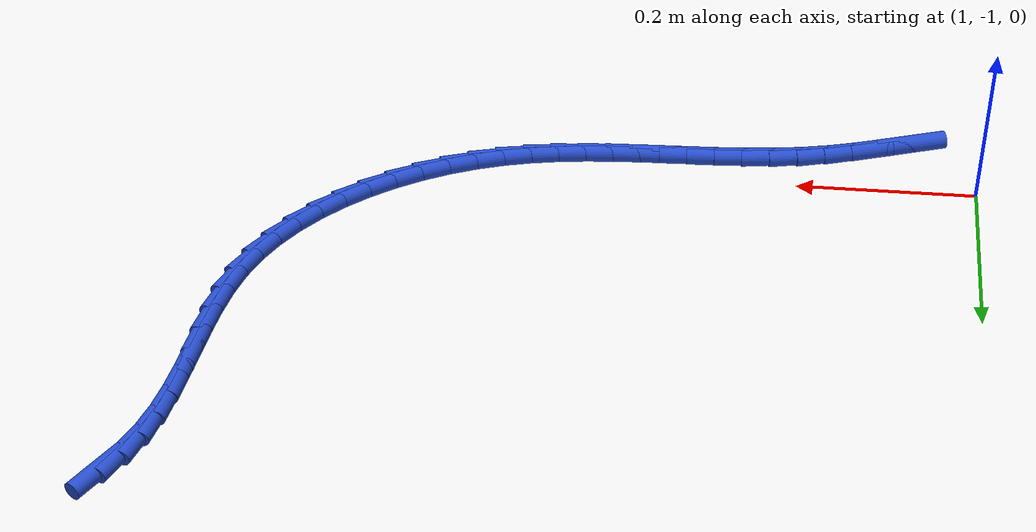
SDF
<sdf version="1.6">
 <world name="default">
  <model name="ground_plane">
   <static>1</static>
   <link name="link">
    <collision name="collision">
     <geometry><plane><normal>0 0 1</normal><size>100 100</size></plane></geometry>
     <surface><friction><ode><mu>100</mu><mu2>50</mu2></ode></friction></surface>
    </collision>
    <visual name="visual">
     <cast_shadows>0</cast_shadows>
     <geometry><plane><normal>0 0 1</normal><size>100 100</size></plane></geometry>
     <material>
      <script><uri>file://media/materials/scripts/gazebo.material</uri><name>Gazebo/WhiteGlow</name></script>
     </material>
    </visual>
   </link>
  </model>
  <model name="line">
   <link name="link_129">
    <pose>1.8794862257224845 -0.5104149278211452 0.01 0 1.57 0.9832538088832969</pose>
    <collision name="collision">
     <geometry><cylinder><radius>0.01</radius><length>0.08</length></cylinder></geometry>
    </collision>
    <visual name="visual">
     <material>
      <script><name>Gazebo/Blue</name><uri>file://media/materials/scripts/gazebo.material</uri></script>
     </material>
     <geometry><cylinder><radius>0.01</radius><length>0.08</length></cylinder></geometry>
    </visual>
   </link>
   <link name="link_130">
    <pose>1.8626352955323215 -0.5357165373397614 0.01 0 1.57 1.0994806862835167</pose>
    <collision name="collision">
     <geometry><cylinder><radius>0.01</radius><length>0.08</length></cylinder></geometry>
    </collision>
    <visual name="visual">
     <material>
      <script><name>Gazebo/Blue</name><uri>file://media/materials/scripts/gazebo.material</uri></script>
     </material>
     <geometry><cylinder><radius>0.01</radius><length>0.08</length></cylinder></geometry>
    </visual>
   </link>
   <link name="link_131">
    <pose>1.8489927261339338 -0.5624865084237812 0.01 0 1.57 1.220638845729452</pose>
    <collision name="collision">
     <geometry><cylinder><radius>0.01</radius><length>0.08</length></cylinder></geometry>
    </collision>
    <visual name="visual">
     <material>
      <script><name>Gazebo/Blue</name><uri>file://media/materials/scripts/gazebo.material</uri></script>
     </material>
     <geometry><cylinder><radius>0.01</radius><length>0.08</length></cylinder></geometry>
    </visual>
   </link>
   <link name="link_132">
    <pose>1.838666074780153 -0.5907626701796276 0.01 0 1.57 1.3129143692624372</pose>
    <collision name="collision">
     <geometry><cylinder><radius>0.01</radius><length>0.08</length></cylinder></geometry>
    </collision>
    <visual name="visual">
     <material>
      <script><name>Gazebo/Blue</name><uri>file://media/materials/scripts/gazebo.material</uri></script>
     </material>
     <geometry><cylinder><radius>0.01</radius><length>0.08</length></cylinder></geometry>
    </visual>
   </link>
   <link name="link_133">
    <pose>1.830898087128074 -0.6202142106364167 0.01 0 1.57 1.373952090563818</pose>
    <collision name="collision">
     <geometry><cylinder><radius>0.01</radius><length>0.08</length></cylinder></geometry>
    </collision>
    <visual name="visual">
     <material>
      <script><name>Gazebo/Blue</name><uri>file://media/materials/scripts/gazebo.material</uri></script>
     </material>
     <geometry><cylinder><radius>0.01</radius><length>0.08</length></cylinder></geometry>
    </visual>
   </link>
   <link name="link_134">
    <pose>1.8248621324778107 -0.6504807449369804 0.01 0 1.57 1.4053194975285626</pose>
    <collision name="collision">
     <geometry><cylinder><radius>0.01</radius><length>0.08</length></cylinder></geometry>
    </collision>
    <visual name="visual">
     <material>
      <script><name>Gazebo/Blue</name><uri>file://media/materials/scripts/gazebo.material</uri></script>
     </material>
     <geometry><cylinder><radius>0.01</radius><length>0.08</length></cylinder></geometry>
    </visual>
   </link>
   <link name="link_135">
    <pose>1.8197315801294784 -0.6812018882241515 0.01 0 1.57 1.4083046524467209</pose>
    <collision name="collision">
     <geometry><cylinder><radius>0.01</radius><length>0.08</length></cylinder></geometry>
    </collision>
    <visual name="visual">
     <material>
      <script><name>Gazebo/Blue</name><uri>file://media/materials/scripts/gazebo.material</uri></script>
     </material>
     <geometry><cylinder><radius>0.01</radius><length>0.08</length></cylinder></geometry>
    </visual>
   </link>
   <link name="link_136">
    <pose>1.814679799383191 -0.7120172556407606 0.01 0 1.57 1.383183171983076</pose>
    <collision name="collision">
     <geometry><cylinder><radius>0.01</radius><length>0.08</length></cylinder></geometry>
    </collision>
    <visual name="visual">
     <material>
      <script><name>Gazebo/Blue</name><uri>file://media/materials/scripts/gazebo.material</uri></script>
     </material>
     <geometry><cylinder><radius>0.01</radius><length>0.08</length></cylinder></geometry>
    </visual>
   </link>
   <link name="link_137">
    <pose>1.8088801595390631 -0.7425664623296405 0.01 0 1.57 1.3291713936222507</pose>
    <collision name="collision">
     <geometry><cylinder><radius>0.01</radius><length>0.08</length></cylinder></geometry>
    </collision>
    <visual name="visual">
     <material>
      <script><name>Gazebo/Blue</name><uri>file://media/materials/scripts/gazebo.material</uri></script>
     </material>
     <geometry><cylinder><radius>0.01</radius><length>0.08</length></cylinder></geometry>
    </visual>
   </link>
   <link name="link_138">
    <pose>1.8015060298972088 -0.7724891234336227 0.01 0 1.57 1.2450075887710201</pose>
    <collision name="collision">
     <geometry><cylinder><radius>0.01</radius><length>0.08</length></cylinder></geometry>
    </collision>
    <visual name="visual">
     <material>
      <script><name>Gazebo/Blue</name><uri>file://media/materials/scripts/gazebo.material</uri></script>
     </material>
     <geometry><cylinder><radius>0.01</radius><length>0.08</length></cylinder></geometry>
    </visual>
   </link>
   <link name="link_139">
    <pose>1.7917307797577433 -0.8014248540955405 0.01 0 1.57 1.1335012575621384</pose>
    <collision name="collision">
     <geometry><cylinder><radius>0.01</radius><length>0.08</length></cylinder></geometry>
    </collision>
    <visual name="visual">
     <material>
      <script><name>Gazebo/Blue</name><uri>file://media/materials/scripts/gazebo.material</uri></script>
     </material>
     <geometry><cylinder><radius>0.01</radius><length>0.08</length></cylinder></geometry>
    </visual>
   </link>
   <link name="link_140">
    <pose>1.7788229157636892 -0.8290364227343261 0.01 0 1.57 1.0197376607577822</pose>
    <collision name="collision">
     <geometry><cylinder><radius>0.01</radius><length>0.08</length></cylinder></geometry>
    </collision>
    <visual name="visual">
     <material>
      <script><name>Gazebo/Blue</name><uri>file://media/materials/scripts/gazebo.material</uri></script>
     </material>
     <geometry><cylinder><radius>0.01</radius><length>0.08</length></cylinder></geometry>
    </visual>
   </link>
   <link name="link_141">
    <pose>1.7627677027701887 -0.8551610329620368 0.01 0 1.57 0.9150325224117422</pose>
    <collision name="collision">
     <geometry><cylinder><radius>0.01</radius><length>0.08</length></cylinder></geometry>
    </collision>
    <visual name="visual">
     <material>
      <script><name>Gazebo/Blue</name><uri>file://media/materials/scripts/gazebo.material</uri></script>
     </material>
     <geometry><cylinder><radius>0.01</radius><length>0.08</length></cylinder></geometry>
    </visual>
   </link>
   <link name="link_142">
    <pose>1.7438770723796762 -0.8797153882502179 0.01 0 1.57 0.8189813162832272</pose>
    <collision name="collision">
     <geometry><cylinder><radius>0.01</radius><length>0.08</length></cylinder></geometry>
    </collision>
    <visual name="visual">
     <material>
      <script><name>Gazebo/Blue</name><uri>file://media/materials/scripts/gazebo.material</uri></script>
     </material>
     <geometry><cylinder><radius>0.01</radius><length>0.08</length></cylinder></geometry>
    </visual>
   </link>
   <link name="link_143">
    <pose>1.722464616711951 -0.9026165961853074 0.01 0 1.57 0.7306249665658359</pose>
    <collision name="collision">
     <geometry><cylinder><radius>0.01</radius><length>0.08</length></cylinder></geometry>
    </collision>
    <visual name="visual">
     <material>
      <script><name>Gazebo/Blue</name><uri>file://media/materials/scripts/gazebo.material</uri></script>
     </material>
     <geometry><cylinder><radius>0.01</radius><length>0.08</length></cylinder></geometry>
    </visual>
   </link>
   <link name="link_144">
    <pose>1.6988439278868193 -0.9237817643537424 0.01 0 1.57 0.6487412495928189</pose>
    <collision name="collision">
     <geometry><cylinder><radius>0.01</radius><length>0.08</length></cylinder></geometry>
    </collision>
    <visual name="visual">
     <material>
      <script><name>Gazebo/Blue</name><uri>file://media/materials/scripts/gazebo.material</uri></script>
     </material>
     <geometry><cylinder><radius>0.01</radius><length>0.08</length></cylinder></geometry>
    </visual>
   </link>
   <link name="link_145">
    <pose>1.6733285980240795 -0.9431280003419601 0.01 0 1.57 0.5719981512286958</pose>
    <collision name="collision">
     <geometry><cylinder><radius>0.01</radius><length>0.08</length></cylinder></geometry>
    </collision>
    <visual name="visual">
     <material>
      <script><name>Gazebo/Blue</name><uri>file://media/materials/scripts/gazebo.material</uri></script>
     </material>
     <geometry><cylinder><radius>0.01</radius><length>0.08</length></cylinder></geometry>
    </visual>
   </link>
   <link name="link_146">
    <pose>1.6462322192435355 -0.9605724117363991 0.01 0 1.57 0.4990344993819072</pose>
    <collision name="collision">
     <geometry><cylinder><radius>0.01</radius><length>0.08</length></cylinder></geometry>
    </collision>
    <visual name="visual">
     <material>
      <script><name>Gazebo/Blue</name><uri>file://media/materials/scripts/gazebo.material</uri></script>
     </material>
     <geometry><cylinder><radius>0.01</radius><length>0.08</length></cylinder></geometry>
    </visual>
   </link>
   <link name="link_147">
    <pose>1.6178683836649885 -0.9760321061234962 0.01 0 1.57 0.42848761116724027</pose>
    <collision name="collision">
     <geometry><cylinder><radius>0.01</radius><length>0.08</length></cylinder></geometry>
    </collision>
    <visual name="visual">
     <material>
      <script><name>Gazebo/Blue</name><uri>file://media/materials/scripts/gazebo.material</uri></script>
     </material>
     <geometry><cylinder><radius>0.01</radius><length>0.08</length></cylinder></geometry>
    </visual>
   </link>
   <link name="link_148">
    <pose>1.5885506834082397 -0.9894241910896899 0.01 0 1.57 0.358985553488445</pose>
    <collision name="collision">
     <geometry><cylinder><radius>0.01</radius><length>0.08</length></cylinder></geometry>
    </collision>
    <visual name="visual">
     <material>
      <script><name>Gazebo/Blue</name><uri>file://media/materials/scripts/gazebo.material</uri></script>
     </material>
     <geometry><cylinder><radius>0.01</radius><length>0.08</length></cylinder></geometry>
    </visual>
   </link>
   <link name="link_149">
    <pose>1.5585927105930923 -1.0006657742214167 0.01 0 1.57 0.289154359116167</pose>
    <collision name="collision">
     <geometry><cylinder><radius>0.01</radius><length>0.08</length></cylinder></geometry>
    </collision>
    <visual name="visual">
     <material>
      <script><name>Gazebo/Blue</name><uri>file://media/materials/scripts/gazebo.material</uri></script>
     </material>
     <geometry><cylinder><radius>0.01</radius><length>0.08</length></cylinder></geometry>
    </visual>
   </link>
   <link name="link_150">
    <pose>1.5283069799845204 -1.0096755390123469 0.01 0 1.57 0.22135163162910315</pose>
    <collision name="collision">
     <geometry><cylinder><radius>0.01</radius><length>0.08</length></cylinder></geometry>
    </collision>
    <visual name="visual">
     <material>
      <script><name>Gazebo/Blue</name><uri>file://media/materials/scripts/gazebo.material</uri></script>
     </material>
     <geometry><cylinder><radius>0.01</radius><length>0.08</length></cylinder></geometry>
    </visual>
   </link>
   <link name="link_151">
    <pose>1.4979072171562444 -1.0165166734378375 0.01 0 1.57 0.16243118234699902</pose>
    <collision name="collision">
     <geometry><cylinder><radius>0.01</radius><length>0.08</length></cylinder></geometry>
    </collision>
    <visual name="visual">
     <material>
      <script><name>Gazebo/Blue</name><uri>file://media/materials/scripts/gazebo.material</uri></script>
     </material>
     <geometry><cylinder><radius>0.01</radius><length>0.08</length></cylinder></geometry>
    </visual>
   </link>
   <link name="link_152">
    <pose>1.4674302799638232 -1.0215110797882 0.01 0 1.57 0.11400764106842406</pose>
    <collision name="collision">
     <geometry><cylinder><radius>0.01</radius><length>0.08</length></cylinder></geometry>
    </collision>
    <visual name="visual">
     <material>
      <script><name>Gazebo/Blue</name><uri>file://media/materials/scripts/gazebo.material</uri></script>
     </material>
     <geometry><cylinder><radius>0.01</radius><length>0.08</length></cylinder></geometry>
    </visual>
   </link>
   <link name="link_153">
    <pose>1.4368946526615707 -1.025007536449111 0.01 0 1.57 0.07661901870358702</pose>
    <collision name="collision">
     <geometry><cylinder><radius>0.01</radius><length>0.08</length></cylinder></geometry>
    </collision>
    <visual name="visual">
     <material>
      <script><name>Gazebo/Blue</name><uri>file://media/materials/scripts/gazebo.material</uri></script>
     </material>
     <geometry><cylinder><radius>0.01</radius><length>0.08</length></cylinder></geometry>
    </visual>
   </link>
   <link name="link_154">
    <pose>1.406318819503796 -1.0273548218062452 0.01 0 1.57 0.05051307396647691</pose>
    <collision name="collision">
     <geometry><cylinder><radius>0.01</radius><length>0.08</length></cylinder></geometry>
    </collision>
    <visual name="visual">
     <material>
      <script><name>Gazebo/Blue</name><uri>file://media/materials/scripts/gazebo.material</uri></script>
     </material>
     <geometry><cylinder><radius>0.01</radius><length>0.08</length></cylinder></geometry>
    </visual>
   </link>
   <link name="link_155">
    <pose>1.3757212647448116 -1.0289017142452792 0.01 0 1.57 0.035777196274101065</pose>
    <collision name="collision">
     <geometry><cylinder><radius>0.01</radius><length>0.08</length></cylinder></geometry>
    </collision>
    <visual name="visual">
     <material>
      <script><name>Gazebo/Blue</name><uri>file://media/materials/scripts/gazebo.material</uri></script>
     </material>
     <geometry><cylinder><radius>0.01</radius><length>0.08</length></cylinder></geometry>
    </visual>
   </link>
   <link name="link_156">
    <pose>1.345120472638928 -1.029996992151889 0.01 0 1.57 0.03243668428827887</pose>
    <collision name="collision">
     <geometry><cylinder><radius>0.01</radius><length>0.08</length></cylinder></geometry>
    </collision>
    <visual name="visual">
     <material>
      <script><name>Gazebo/Blue</name><uri>file://media/materials/scripts/gazebo.material</uri></script>
     </material>
     <geometry><cylinder><radius>0.01</radius><length>0.08</length></cylinder></geometry>
    </visual>
   </link>
   <link name="link_157">
    <pose>1.314534927440459 -1.0309894339117505 0.01 0 1.57 0.04051171707443236</pose>
    <collision name="collision">
     <geometry><cylinder><radius>0.01</radius><length>0.08</length></cylinder></geometry>
    </collision>
    <visual name="visual">
     <material>
      <script><name>Gazebo/Blue</name><uri>file://media/materials/scripts/gazebo.material</uri></script>
     </material>
     <geometry><cylinder><radius>0.01</radius><length>0.08</length></cylinder></geometry>
    </visual>
   </link>
   <link name="link_158">
    <pose>1.2839831134037145 -1.0322278179105389 0.01 0 1.57 0.06003036840339343</pose>
    <collision name="collision">
     <geometry><cylinder><radius>0.01</radius><length>0.08</length></cylinder></geometry>
    </collision>
    <visual name="visual">
     <material>
      <script><name>Gazebo/Blue</name><uri>file://media/materials/scripts/gazebo.material</uri></script>
     </material>
     <geometry><cylinder><radius>0.01</radius><length>0.08</length></cylinder></geometry>
    </visual>
   </link>
   <link name="link_159">
    <pose>1.2534835147830066 -1.034060922533931 0.01 0 1.57 0.09099690311769114</pose>
    <collision name="collision">
     <geometry><cylinder><radius>0.01</radius><length>0.08</length></cylinder></geometry>
    </collision>
    <visual name="visual">
     <material>
      <script><name>Gazebo/Blue</name><uri>file://media/materials/scripts/gazebo.material</uri></script>
     </material>
     <geometry><cylinder><radius>0.01</radius><length>0.08</length></cylinder></geometry>
    </visual>
   </link>
   <link name="link_160">
    <pose>1.2230546158326452 -1.0368375261676022 0.01 0 1.57 0.13331526232439436</pose>
    <collision name="collision">
     <geometry><cylinder><radius>0.01</radius><length>0.08</length></cylinder></geometry>
    </collision>
    <visual name="visual">
     <material>
      <script><name>Gazebo/Blue</name><uri>file://media/materials/scripts/gazebo.material</uri></script>
     </material>
     <geometry><cylinder><radius>0.01</radius><length>0.08</length></cylinder></geometry>
    </visual>
   </link>
   <link name="link_161">
    <pose>1.1927149008069442 -1.0409064071972285 0.01 0 1.57 0.18664380578313636</pose>
    <collision name="collision">
     <geometry><cylinder><radius>0.01</radius><length>0.08</length></cylinder></geometry>
    </collision>
    <visual name="visual">
     <material>
      <script><name>Gazebo/Blue</name><uri>file://media/materials/scripts/gazebo.material</uri></script>
     </material>
     <geometry><cylinder><radius>0.01</radius><length>0.08</length></cylinder></geometry>
    </visual>
   </link>
   <link name="link_162">
    <pose>1.1624828278025938 -1.0466154844664224 0.01 0 1.57 0.24191777253528565</pose>
    <collision name="collision">
     <geometry><cylinder><radius>0.01</radius><length>0.08</length></cylinder></geometry>
    </collision>
    <visual name="visual">
     <material>
      <script><name>Gazebo/Blue</name><uri>file://media/materials/scripts/gazebo.material</uri></script>
     </material>
     <geometry><cylinder><radius>0.01</radius><length>0.08</length></cylinder></geometry>
    </visual>
   </link>
   <link name="link_163">
    <pose>1.1323687437524264 -1.0540461431484829 0.01 0 1.57 0.27885524027181885</pose>
    <collision name="collision">
     <geometry><cylinder><radius>0.01</radius><length>0.08</length></cylinder></geometry>
    </collision>
    <visual name="visual">
     <material>
      <script><name>Gazebo/Blue</name><uri>file://media/materials/scripts/gazebo.material</uri></script>
     </material>
     <geometry><cylinder><radius>0.01</radius><length>0.08</length></cylinder></geometry>
    </visual>
   </link>
   <link name="link_164">
    <pose>1.1023634385341614 -1.0626371215943773 0.01 0 1.57 0.2952113293946594</pose>
    <collision name="collision">
     <geometry><cylinder><radius>0.01</radius><length>0.08</length></cylinder></geometry>
    </collision>
    <visual name="visual">
     <material>
      <script><name>Gazebo/Blue</name><uri>file://media/materials/scripts/gazebo.material</uri></script>
     </material>
     <geometry><cylinder><radius>0.01</radius><length>0.08</length></cylinder></geometry>
    </visual>
   </link>
   <link name="link_165">
    <pose>1.072454813684983 -1.0717322469909898 0.01 0 1.57 0.2913302570527876</pose>
    <collision name="collision">
     <geometry><cylinder><radius>0.01</radius><length>0.08</length></cylinder></geometry>
    </collision>
    <visual name="visual">
     <material>
      <script><name>Gazebo/Blue</name><uri>file://media/materials/scripts/gazebo.material</uri></script>
     </material>
     <geometry><cylinder><radius>0.01</radius><length>0.08</length></cylinder></geometry>
    </visual>
   </link>
  </model>
 </world>
</sdf>
